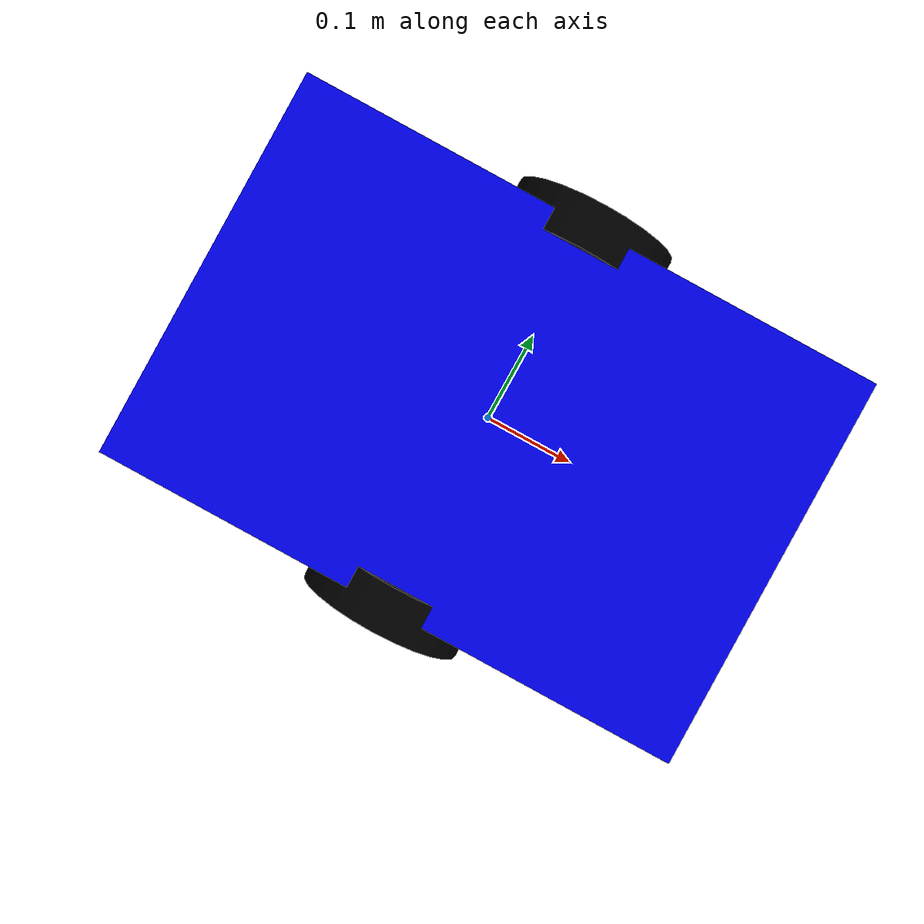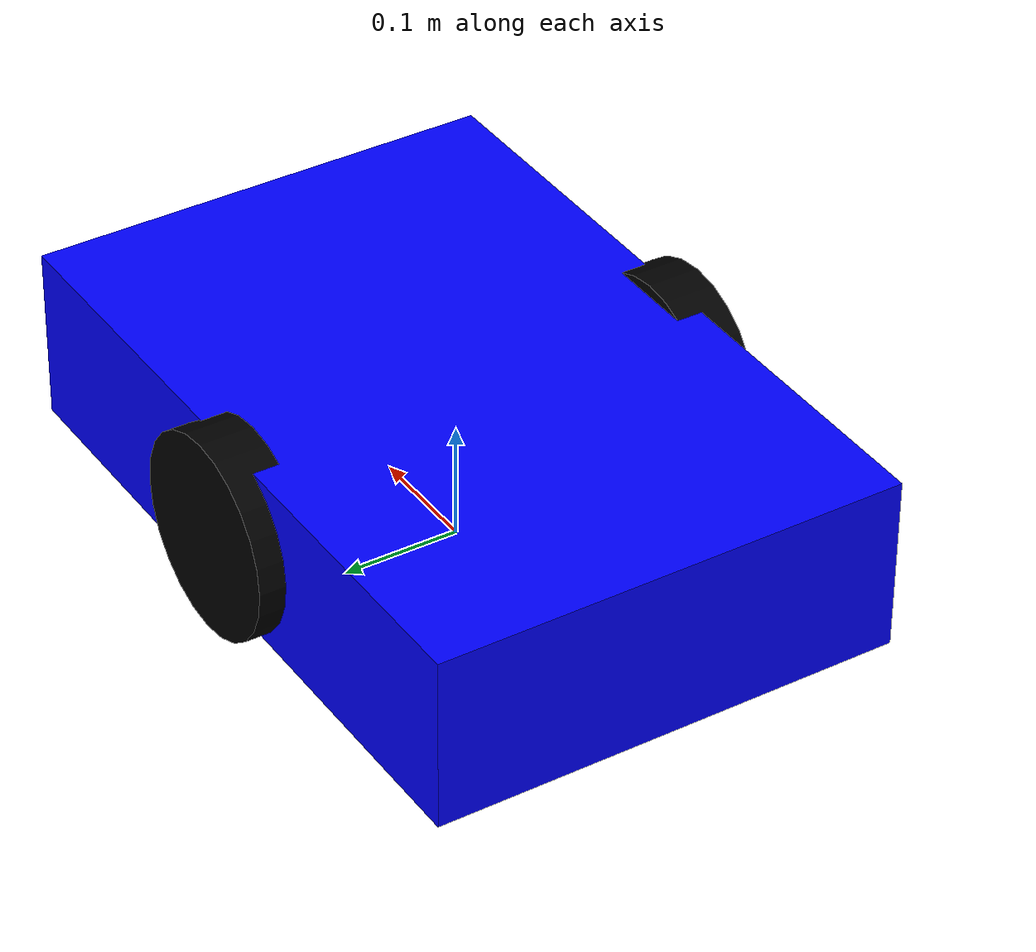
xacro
<?xml version="1.0"?>
<robot name="autolabor_mini" xmlns:xacro="http://www.ros.org/wiki/xacro">
    <!-- Robot Parameters -->
    <xacro:property name="base_length" value="0.6"/>
    <xacro:property name="base_width" value="0.4"/>
    <xacro:property name="base_height" value="0.15"/>
    <xacro:property name="wheel_radius" value="0.085"/>
    <xacro:property name="wheel_width" value="0.045"/>

    <!-- Add dummy link to fix KDL warning -->
    <link name="base_footprint"/>

    <joint name="base_joint" type="fixed">
        <parent link="base_footprint"/>
        <child link="base_link"/>
        <origin xyz="0 0 ${wheel_radius}" rpy="0 0 0"/>
    </joint>

    <!-- Base Link -->
    <link name="base_link">
        <visual>
            <geometry>
                <box size="${base_length} ${base_width} ${base_height}"/>
            </geometry>
            <material name="blue">
                <color rgba="0 0 1 1"/>
            </material>
        </visual>
        <collision>
            <geometry>
                <box size="${base_length} ${base_width} ${base_height}"/>
            </geometry>
        </collision>
        <inertial>
            <mass value="5.0"/>
            <inertia ixx="0.1" ixy="0" ixz="0" iyy="0.1" iyz="0" izz="0.1"/>
        </inertial>
    </link>

    <!-- Left Wheel -->
    <link name="left_wheel">
        <visual>
            <geometry>
                <cylinder radius="${wheel_radius}" length="${wheel_width}"/>
            </geometry>
            <material name="black">
                <color rgba="0 0 0 1"/>
            </material>
        </visual>
        <collision>
            <geometry>
                <cylinder radius="${wheel_radius}" length="${wheel_width}"/>
            </geometry>
        </collision>
        <inertial>
            <mass value="1.0"/>
            <inertia ixx="0.01" ixy="0" ixz="0" iyy="0.01" iyz="0" izz="0.01"/>
        </inertial>
    </link>

    <!-- Right Wheel -->
    <link name="right_wheel">
        <visual>
            <geometry>
                <cylinder radius="${wheel_radius}" length="${wheel_width}"/>
            </geometry>
            <material name="black">
                <color rgba="0 0 0 1"/>
            </material>
        </visual>
        <collision>
            <geometry>
                <cylinder radius="${wheel_radius}" length="${wheel_width}"/>
            </geometry>
        </collision>
        <inertial>
            <mass value="1.0"/>
            <inertia ixx="0.01" ixy="0" ixz="0" iyy="0.01" iyz="0" izz="0.01"/>
        </inertial>
    </link>

    <!-- Left Wheel Joint -->
    <joint name="left_wheel_joint" type="continuous">
        <parent link="base_link"/>
        <child link="left_wheel"/>
        <origin xyz="0 ${base_width/2} 0" rpy="${-pi/2} 0 0"/>
        <axis xyz="0 0 1"/>
    </joint>

    <!-- Right Wheel Joint -->
    <joint name="right_wheel_joint" type="continuous">
        <parent link="base_link"/>
        <child link="right_wheel"/>
        <origin xyz="0 ${-base_width/2} 0" rpy="${-pi/2} 0 0"/>
        <axis xyz="0 0 1"/>
    </joint>

    <!-- Gazebo Plugin -->
    <gazebo>
        <plugin name="differential_drive_controller" filename="libgazebo_ros_diff_drive.so">
            <leftJoint>left_wheel_joint</leftJoint>
            <rightJoint>right_wheel_joint</rightJoint>
            <wheelSeparation>${base_width}</wheelSeparation>
            <wheelDiameter>${2*wheel_radius}</wheelDiameter>
            <robotBaseFrame>base_footprint</robotBaseFrame>
            <commandTopic>cmd_vel</commandTopic>
            <odometryTopic>odom</odometryTopic>
            <odometryFrame>odom</odometryFrame>
            <publishWheelTF>true</publishWheelTF>
            <publishOdomTF>true</publishOdomTF>
            <publishWheelJointState>true</publishWheelJointState>
            <legacyMode>false</legacyMode>
            <updateRate>30</updateRate>
            <leftWheelTorque>20</leftWheelTorque>
            <rightWheelTorque>20</rightWheelTorque>
            <wheelAcceleration>1.0</wheelAcceleration>
            <wheelTorque>20</wheelTorque>
            <odometrySource>encoder</odometrySource>
            <publishTf>true</publishTf>
        </plugin>
    </gazebo>
</robot>
